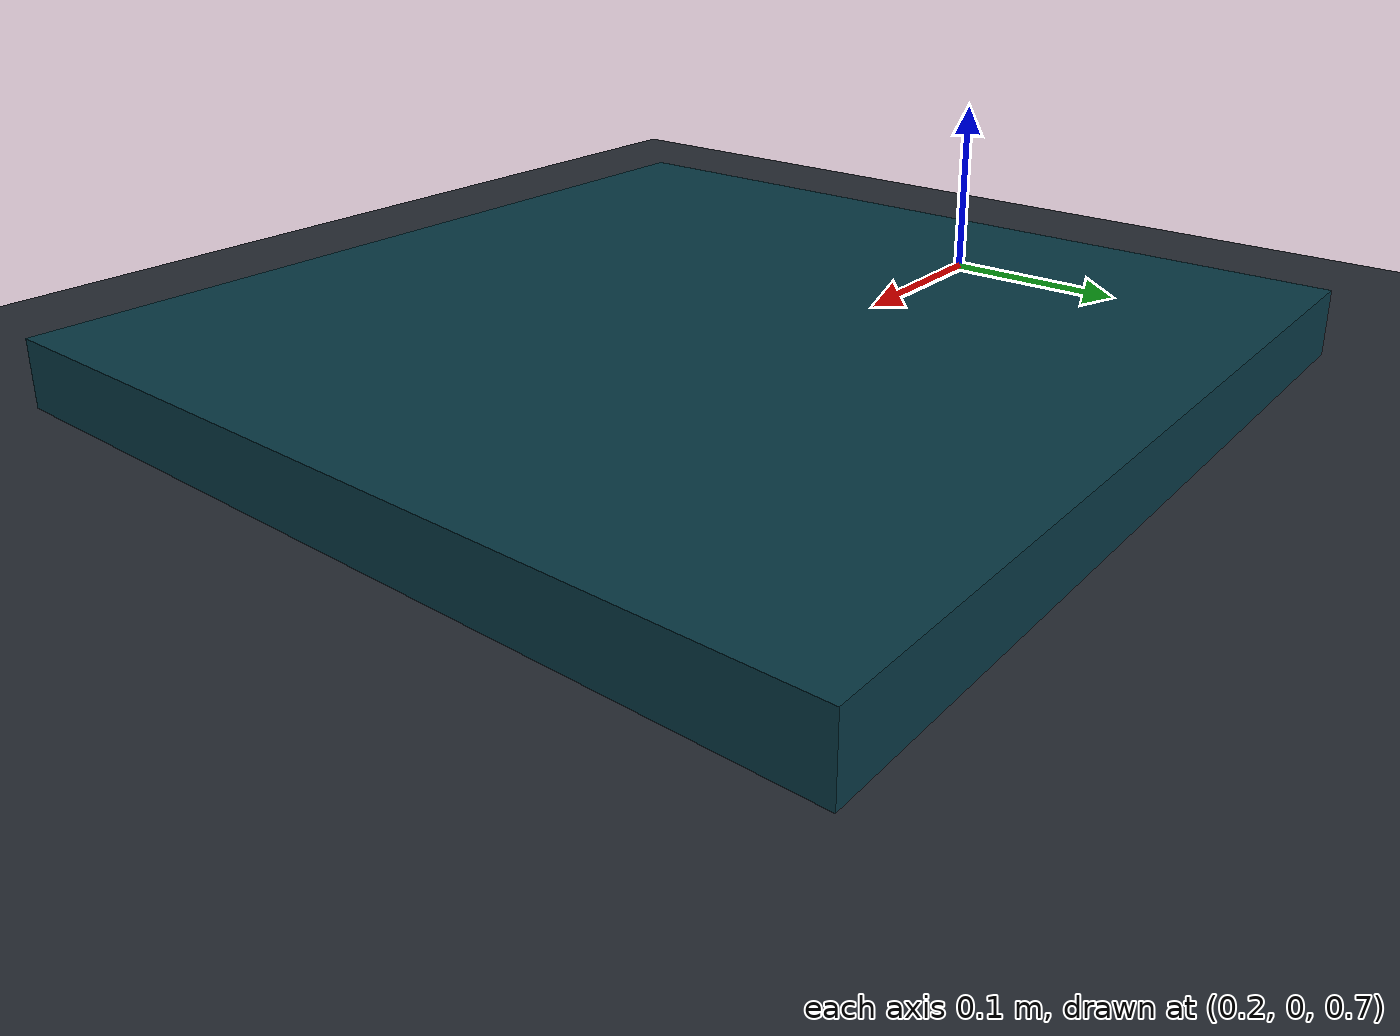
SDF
<?xml version="1.0"?>
<sdf version="1.7">
  <world name="robotlab_ros2">
    <gravity>0 0 -9.81</gravity>
    <scene>
      <ambient>0.25 0.25 0.28 1</ambient>
      <background>0.02 0.03 0.06 1</background>
      <shadows>true</shadows>
    </scene>
    <light name="key_light" type="directional">
      <cast_shadows>true</cast_shadows>
      <pose>-1 -1 3 0.4 0 0</pose>
      <diffuse>0.95 0.95 0.9 1</diffuse>
      <specular>0.25 0.25 0.25 1</specular>
      <direction>0.3 0.2 -1</direction>
    </light>
    <model name="ground">
      <static>true</static>
      <link name="link">
        <collision name="collision"><geometry><plane><normal>0 0 1</normal><size>20 20</size></plane></geometry></collision>
        <visual name="visual"><geometry><plane><normal>0 0 1</normal><size>20 20</size></plane></geometry><material><diffuse>0.05 0.06 0.09 1</diffuse></material></visual>
      </link>
    </model>
    <model name="worktable">
      <static>true</static>
      <pose>0.25 0 0.62 0 0 0</pose>
      <link name="link">
        <collision name="collision"><geometry><box><size>1.8 1.2 0.12</size></box></geometry></collision>
        <visual name="visual"><geometry><box><size>1.8 1.2 0.12</size></box></geometry><material><diffuse>0.15 0.17 0.2 1</diffuse></material></visual>
      </link>
    </model>
    <model name="board">
      <static>true</static>
      <pose>0.45 0 0.72 0 0 0</pose>
      <link name="link">
        <collision name="collision"><geometry><box><size>0.45 0.45 0.035</size></box></geometry></collision>
        <visual name="visual"><geometry><box><size>0.45 0.45 0.035</size></box></geometry><material><diffuse>0.03 0.22 0.27 1</diffuse></material></visual>
      </link>
    </model>
  </world>
</sdf>
